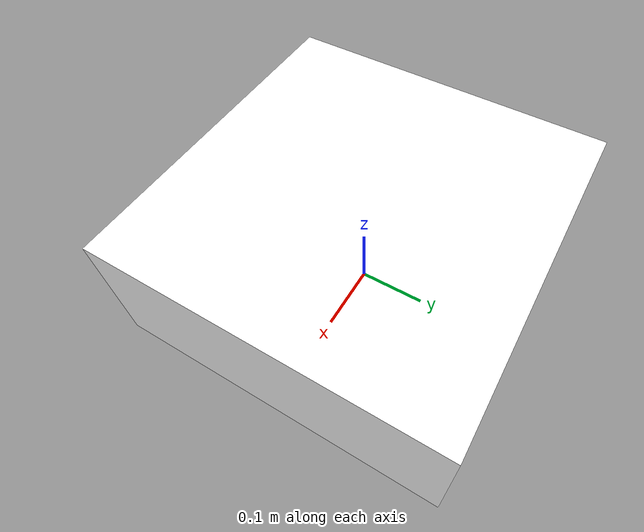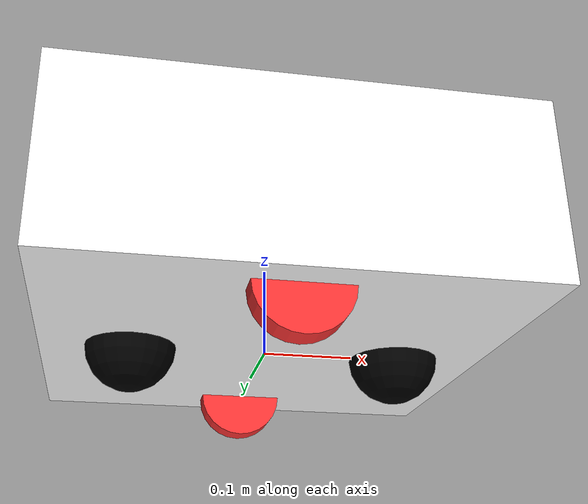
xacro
<?xml version="1.0"?>
<robot xmlns:xacro="http://www.ros.org/wiki/xacro" >

    <xacro:include filename="inertial_macros.xacro"/>

    <material name="white">
        <color rgba="1 1 1 1" />
    </material>

    <material name="red">
        <color rgba="1 0.2 0.2 1"/>
    </material>

    <material name="blue">
        <color rgba="0.2 0.2 1 1"/>
    </material>

    <material name="black">
        <color rgba="0 0 0 1"/>
    </material>

    <!-- BASE LINK -->

    <link name="robot_base">

    </link>

    <!-- CHASSIS LINK -->

    <joint name="chassis_joint" type="fixed">
        <parent link="robot_base"/>
        <child link="chassis"/>
        <origin xyz="-0.25 0 0"/>
    </joint>

    <link name="chassis">
        <visual>
            <origin xyz="0.25 0 0.1"/>
            <geometry>
                <box size="0.5 0.5 0.2"/>
            </geometry>
            <material name="white"/>
        </visual>
        <collision>
            <origin xyz="0.25 0 0.1"/>
            <geometry>
                <box size="0.5 0.5 0.2"/>
            </geometry>
        </collision>
        <xacro:inertial_box mass="0.5" x="0.5" y="0.5" z="0.2">
            <origin xyz="0.25 0 0.1" rpy="0 0 0"/>
        </xacro:inertial_box>
    </link>

    <gazebo reference="chassis">
        <material>Gazebo/White</material>
    </gazebo>

    <!-- LEFT WHEEL LINK -->

    <joint name="left_wheel_joint" type="continuous">
        <parent link="robot_base"/>
        <child link="left_wheel"/>
        <origin xyz="0 0.2 0" rpy="-${pi/2} 0 0" />
        <axis xyz="0 0 1"/>
    </joint>

    <link name="left_wheel">
        <visual>
            <geometry>
                <cylinder radius="0.05" length="0.03"/>
            </geometry>
            <material name="red"/>
        </visual>
        <collision>
            <geometry>
                <cylinder radius="0.05" length="0.03"/>
            </geometry>
        </collision>
        <xacro:inertial_cylinder mass="0.1" radius="0.05" length="0.03">
            <origin xyz="0 0 0" rpy="0 0 0"/>
        </xacro:inertial_cylinder>
    </link>

    <gazebo reference="left_wheel">
        <material>Gazebo/Red</material>
    </gazebo>

    <!-- RIGHT WHEEL LINK -->

    <joint name="right_wheel_joint" type="continuous">
        <parent link="robot_base"/>
        <child link="right_wheel"/>
        <origin xyz="0 -0.2 0" rpy="${pi/2} 0 0" />
        <axis xyz="0 0 -1"/>
    </joint>

    <link name="right_wheel">
        <visual>
            <geometry>
                <cylinder radius="0.05" length="0.03"/>
            </geometry>
            <material name="red"/>
        </visual>
        <collision>
            <geometry>
                <cylinder radius="0.05" length="0.03"/>
            </geometry>
        </collision>
        <xacro:inertial_cylinder mass="0.1" radius="0.05" length="0.03">
            <origin xyz="0 0 0" rpy="0 0 0"/>
        </xacro:inertial_cylinder>
    </link>

    <gazebo reference="right_wheel">
        <material>Gazebo/Red</material>
    </gazebo>

    <!-- CASTER WHEEL LINK -->

    <joint name="caster_wheel_f_joint" type="fixed">
        <parent link="chassis"/>
        <child link="caster_wheel_f"/>
        <origin xyz="0.4 0 0"/>
    </joint>

    <link name="caster_wheel_f">
        <visual>
            <geometry>
                <sphere radius="0.05"/>
            </geometry>
            <material name="black"/>
        </visual>
        <collision>
            <geometry>
                <sphere radius="0.05"/>
            </geometry>
        </collision>
        <xacro:inertial_sphere mass="0.1" radius="0.05">
            <origin xyz="0 0 0" rpy="0 0 0"/>
        </xacro:inertial_sphere>
    </link>

    <gazebo reference="caster_wheel_f">
        <material>Gazebo/Black</material>
        <mu1 value="0.001"/>
        <mu2 value="0.001"/>
    </gazebo>

    <!-- CASTER WHEEL LINK -->

    <joint name="caster_wheel_b_joint" type="fixed">
        <parent link="chassis"/>
        <child link="caster_wheel_b"/>
        <origin xyz="0.1 0 0"/>
    </joint>

    <link name="caster_wheel_b">
        <visual>
            <geometry>
                <sphere radius="0.05"/>
            </geometry>
            <material name="black"/>
        </visual>
        <collision>
            <geometry>
                <sphere radius="0.05"/>
            </geometry>
        </collision>
        <xacro:inertial_sphere mass="0.1" radius="0.05">
            <origin xyz="0 0 0" rpy="0 0 0"/>
        </xacro:inertial_sphere>
    </link>

    <gazebo reference="caster_wheel_b">
        <material>Gazebo/Black</material>
        <mu1 value="0.001"/>
        <mu2 value="0.001"/>
    </gazebo>

</robot>
